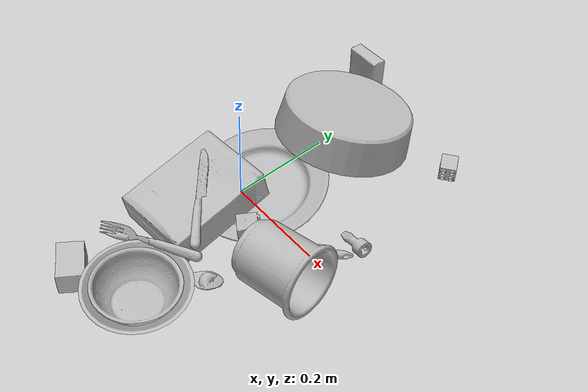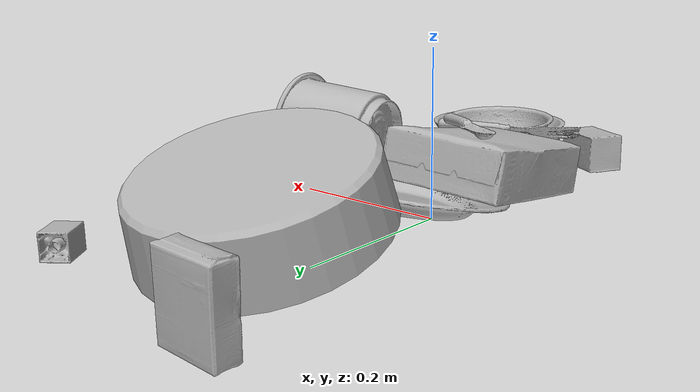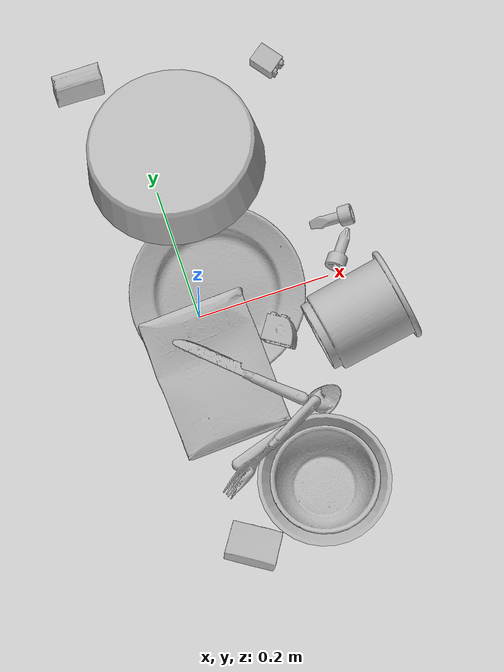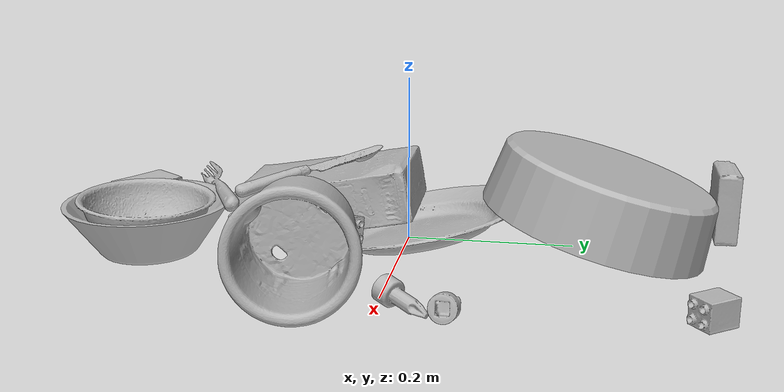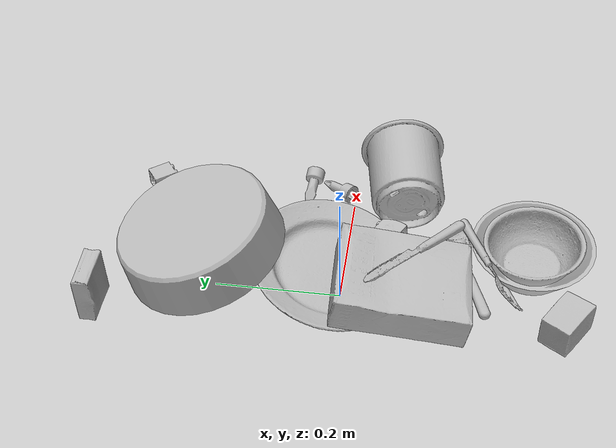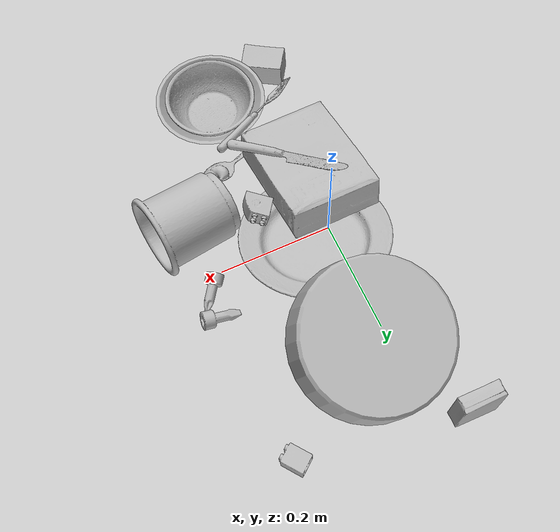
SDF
<sdf version="1.4">
  <world name="default">
    <light name="light1" type="point">
      <pose>0 0 1 0 0 0</pose>
      <diffuse>3 3 3 1</diffuse>
      <specular>3 3 3 1</specular>
    </light>
    <light name="light2" type="point">
      <pose>0 0.5 2 0 0 0</pose>
      <diffuse>1 1 1 1</diffuse>
      <specular>1 1 1 1</specular>
    </light>
    <light name="light3" type="point">
      <pose>0 0.5 2 0 0 0</pose>
      <diffuse>3 3 3 1</diffuse>
      <specular>3 3 3 1</specular>
    </light>
    <scene>
      <ambient>0.7 0.7 0.7</ambient>
    </scene>
    <model name="plate1">
      <link name="link_plate1">
        <collision name="default">
          <geometry>
            <mesh>
              <uri>model://plate/collision_meshes/collision.obj</uri>
              <scale>1.0 1.0 1.0</scale>
            </mesh>
          </geometry>
          <surface>
            <friction>
              <ode>
                <mu>0.5</mu>
                <mu2>0.5</mu2>
              </ode>
            </friction>
          <contact>
        <ode>
            <max_vel>0</max_vel>
            <min_depth>0.0001</min_depth>
            <kp>1e8</kp>
        </ode>
    </contact></surface>
        </collision>
        <visual name="default">
          <geometry>
            <mesh>
              <uri>model://plate/visual_meshes/visual.dae</uri>
              <scale>1.0 1.0 1.0</scale>
            </mesh>
          </geometry>
        </visual>
        <inertial>
          <mass>0.20059238374233246</mass>
          <pose>-0.0006044621695764363 0.00027825910365208983 -0.001056200242601335 0.002218800652723057 -0.0032254723094637602 0.45260588699646775</pose>
          <inertia>
            <ixx>0.00093837525</ixx>
            <iyy>0.0009294</iyy>
            <izz>0.0018353215</izz>
            <ixy>0</ixy>
            <ixz>0</ixz>
            <iyz>0</iyz>
          </inertia>
        </inertial>
      </link>
      <pose>0.03476271033287048 0.01974671334028244 0.029836179688572884 -0.19475447933468135 -0.08157850430302124 2.478132476055519</pose>
    </model>
    <model name="plate2">
      <link name="link_plate2">
        <collision name="default">
          <geometry>
            <mesh>
              <uri>model://pan_tefal/collision_meshes/collision.obj</uri>
              <scale>1.0 1.0 1.0</scale>
            </mesh>
          </geometry>
          <surface>
            <friction>
              <ode>
                <mu>0.5</mu>
                <mu2>0.5</mu2>
              </ode>
            </friction>
          <contact>
        <ode>
            <max_vel>0</max_vel>
            <min_depth>0.0001</min_depth>
            <kp>1e8</kp>
        </ode>
    </contact></surface>
        </collision>
        <visual name="default">
          <geometry>
            <mesh>
              <uri>model://pan_tefal/visual_meshes/visual.dae</uri>
              <scale>1.0 1.0 1.0</scale>
            </mesh>
          </geometry>
        </visual>
        <inertial>
          <mass>0.5801199674606323</mass>
          <pose>-0.00018002555589191616 3.279062366345897e-05 -0.008514936082065105 0.0008190222895173471 -0.0003301392673675887 -0.3318501085377774</pose>
          <inertia>
            <ixx>0.00400454</ixx>
            <iyy>0.004030358</iyy>
            <izz>0.0073715877</izz>
            <ixy>0</ixy>
            <ixz>0</ixz>
            <iyz>0</iyz>
          </inertia>
        </inertial>
      </link>
      <pose>0.03630924969911575 0.23084405064582825 0.07307818531990051 -2.860977272492056 0.01628411037464284 -3.055495567465555</pose>
    </model>
    <model name="bowl1">
      <link name="link_bowl1">
        <collision name="default">
          <geometry>
            <mesh>
              <uri>model://bowl/collision_meshes/collision.obj</uri>
              <scale>1.0 1.0 1.0</scale>
            </mesh>
          </geometry>
          <surface>
            <friction>
              <ode>
                <mu>0.5</mu>
                <mu2>0.5</mu2>
              </ode>
            </friction>
          <contact>
        <ode>
            <max_vel>0</max_vel>
            <min_depth>0.0001</min_depth>
            <kp>1e8</kp>
        </ode>
    </contact></surface>
        </collision>
        <visual name="default">
          <geometry>
            <mesh>
              <uri>model://bowl/visual_meshes/visual.dae</uri>
              <scale>1.0 1.0 1.0</scale>
            </mesh>
          </geometry>
        </visual>
        <inertial>
          <mass>0.055578216910362244</mass>
          <pose>0.00020445502013899386 -0.0010302060982212424 -0.000804265437182039 -0.015764048263850368 0.014546844804774466 0.7140432473852318</pose>
          <inertia>
            <ixx>0.00012766755</ixx>
            <iyy>0.000124815</iyy>
            <izz>0.00021478078</izz>
            <ixy>0</ixy>
            <ixz>0</ixz>
            <iyz>0</iyz>
          </inertia>
        </inertial>
      </link>
      <pose>0.09348221123218536 -0.30031171441078186 0.03926534578204155 -0.018825875013948785 0.032511938269989375 0.8363617637946262</pose>
    </model>
    <model name="bowl2">
      <link name="link_bowl2">
        <collision name="default">
          <geometry>
            <mesh>
              <uri>model://bowl_a/collision_meshes/collision.obj</uri>
              <scale>1.0 1.0 1.0</scale>
            </mesh>
          </geometry>
          <surface>
            <friction>
              <ode>
                <mu>0.5</mu>
                <mu2>0.5</mu2>
              </ode>
            </friction>
          <contact>
        <ode>
            <max_vel>0</max_vel>
            <min_depth>0.0001</min_depth>
            <kp>1e8</kp>
        </ode>
    </contact></surface>
        </collision>
        <visual name="default">
          <geometry>
            <mesh>
              <uri>model://bowl_a/visual_meshes/visual.dae</uri>
              <scale>1.0 1.0 1.0</scale>
            </mesh>
          </geometry>
        </visual>
        <inertial>
          <mass>0.31475314497947693</mass>
          <pose>0.00027867438620887697 4.730821092380211e-05 -0.0013765294570475817 -0.0009805369688078041 -0.0010938258688624044 -0.19123886294168949</pose>
          <inertia>
            <ixx>0.00089611666</ixx>
            <iyy>0.00090161816</iyy>
            <izz>0.0015937777</izz>
            <ixy>0</ixy>
            <ixz>0</ixz>
            <iyz>0</iyz>
          </inertia>
        </inertial>
      </link>
      <pose>0.09323885291814804 -0.2984409034252167 0.03038264624774456 8.898932315579924e-06 5.4724079219723554e-06 0.9898146173886662</pose>
    </model>
    <model name="silverware1">
      <link name="link_silverware1">
        <collision name="default">
          <geometry>
            <mesh>
              <uri>model://spoon/collision_meshes/collision.obj</uri>
              <scale>1.0 1.0 1.0</scale>
            </mesh>
          </geometry>
          <surface>
            <friction>
              <ode>
                <mu>0.5</mu>
                <mu2>0.5</mu2>
              </ode>
            </friction>
          <contact>
        <ode>
            <max_vel>0</max_vel>
            <min_depth>0.0001</min_depth>
            <kp>1e8</kp>
        </ode>
    </contact></surface>
        </collision>
        <visual name="default">
          <geometry>
            <mesh>
              <uri>model://spoon/visual_meshes/visual.dae</uri>
              <scale>1.0 1.0 1.0</scale>
            </mesh>
          </geometry>
        </visual>
        <inertial>
          <mass>0.019504988566040993</mass>
          <pose>-0.005526313092559576 -0.0016034174477681518 -0.0007271654321812093 0.03521671064592188 -0.039065845080026425 0.006150613244710899</pose>
          <inertia>
            <ixx>1.0848988e-06</ixx>
            <iyy>7.421582e-05</iyy>
            <izz>7.4750846e-05</izz>
            <ixy>0</ixy>
            <ixz>0</ixz>
            <iyz>0</iyz>
          </inertia>
        </inertial>
      </link>
      <pose>0.06831248104572296 -0.19809933006763458 0.008379172533750534 0.007968256814623837 0.02679937525676406 0.3265504505894214</pose>
    </model>
    <model name="box1">
      <link name="link_box1">
        <collision name="default">
          <geometry>
            <mesh>
              <uri>model://cracker_box/collision_meshes/collision.obj</uri>
              <scale>1.0 1.0 1.0</scale>
            </mesh>
          </geometry>
          <surface>
            <friction>
              <ode>
                <mu>0.5</mu>
                <mu2>0.5</mu2>
              </ode>
            </friction>
          <contact>
        <ode>
            <max_vel>0</max_vel>
            <min_depth>0.0001</min_depth>
            <kp>1e8</kp>
        </ode>
    </contact></surface>
        </collision>
        <visual name="default">
          <geometry>
            <mesh>
              <uri>model://cracker_box/visual_meshes/visual.dae</uri>
              <scale>1.0 1.0 1.0</scale>
            </mesh>
          </geometry>
        </visual>
        <inertial>
          <mass>2.5078790187835693</mass>
          <pose>0.0009464150061830878 0.00025434247800149024 -0.0017029535956680775 -0.00031620768203149627 -0.01110648960041945 0.002546794303792924</pose>
          <inertia>
            <ixx>0.0063789245</ixx>
            <iyy>0.010532858</iyy>
            <izz>0.015031353</izz>
            <ixy>0</ixy>
            <ixz>0</ixz>
            <iyz>0</iyz>
          </inertia>
        </inertial>
      </link>
      <pose>-0.008532986044883728 -0.09804768115282059 0.053157396614551544 0.041787627826363534 0.17337262281992333 -1.5216957921341676</pose>
    </model>
    <model name="box2">
      <link name="link_box2">
        <collision name="default">
          <geometry>
            <mesh>
              <uri>model://gelatin_box/collision_meshes/collision.obj</uri>
              <scale>1.0 1.0 1.0</scale>
            </mesh>
          </geometry>
          <surface>
            <friction>
              <ode>
                <mu>0.5</mu>
                <mu2>0.5</mu2>
              </ode>
            </friction>
          <contact>
        <ode>
            <max_vel>0</max_vel>
            <min_depth>0.0001</min_depth>
            <kp>1e8</kp>
        </ode>
    </contact></surface>
        </collision>
        <visual name="default">
          <geometry>
            <mesh>
              <uri>model://gelatin_box/visual_meshes/visual.dae</uri>
              <scale>1.0 1.0 1.0</scale>
            </mesh>
          </geometry>
        </visual>
        <inertial>
          <mass>0.1847851723432541</mass>
          <pose>0.0004319618456065655 0.00011156872642459348 -0.0003640321083366871 -0.001050372098056681 -0.004755818221834168 0.016440563197305347</pose>
          <inertia>
            <ixx>0.00013044327</ixx>
            <iyy>9.317494e-05</iyy>
            <izz>0.0001985637</izz>
            <ixy>0</ixy>
            <ixz>0</ixz>
            <iyz>0</iyz>
          </inertia>
        </inertial>
      </link>
      <pose>-0.06296262890100479 0.3819311857223511 0.04482777789235115 -1.5709334323454531 -0.00017913913974052366 3.121554792554734</pose>
    </model>
    <model name="cup1">
      <link name="link_cup1">
        <collision name="default">
          <geometry>
            <mesh>
              <uri>model://d_cups/collision_meshes/collision.obj</uri>
              <scale>2.0 2.0 2.0</scale>
            </mesh>
          </geometry>
          <surface>
            <friction>
              <ode>
                <mu>0.5</mu>
                <mu2>0.5</mu2>
              </ode>
            </friction>
          <contact>
        <ode>
            <max_vel>0</max_vel>
            <min_depth>0.0001</min_depth>
            <kp>1e8</kp>
        </ode>
    </contact></surface>
        </collision>
        <visual name="default">
          <geometry>
            <mesh>
              <uri>model://d_cups/visual_meshes/visual.dae</uri>
              <scale>2.0 2.0 2.0</scale>
            </mesh>
          </geometry>
        </visual>
        <inertial>
          <mass>0.47328615188598633</mass>
          <pose>0.0016136143822222948 0.0038234798703342676 -0.004533303435891867 0.24012870248045765 -0.247092443015796 0.5942312682521343</pose>
          <inertia>
            <ixx>0.0015850074</ixx>
            <iyy>0.0015804201</iyy>
            <izz>0.0014347013</izz>
            <ixy>0</ixy>
            <ixz>0</ixz>
            <iyz>0</iyz>
          </inertia>
        </inertial>
      </link>
      <pose>0.2178819179534912 -0.08343750983476639 0.06477224081754684 1.482220349976443 -0.2434428809759277 1.7617996839391066</pose>
    </model>
    <model name="silverware2">
      <link name="link_silverware2">
        <collision name="default">
          <geometry>
            <mesh>
              <uri>model://knife/collision_meshes/collision.obj</uri>
              <scale>1.0 1.0 1.0</scale>
            </mesh>
          </geometry>
          <surface>
            <friction>
              <ode>
                <mu>0.5</mu>
                <mu2>0.5</mu2>
              </ode>
            </friction>
          <contact>
        <ode>
            <max_vel>0</max_vel>
            <min_depth>0.0001</min_depth>
            <kp>1e8</kp>
        </ode>
    </contact></surface>
        </collision>
        <visual name="default">
          <geometry>
            <mesh>
              <uri>model://knife/visual_meshes/visual.dae</uri>
              <scale>1.0 1.0 1.0</scale>
            </mesh>
          </geometry>
        </visual>
        <inertial>
          <mass>0.03430156037211418</mass>
          <pose>-0.02378525398671627 0.0015275129117071629 5.062017953605391e-05 0.07305950900181668 0.01724842494985857 -0.007409825116106198</pose>
          <inertia>
            <ixx>9.736174e-07</ixx>
            <iyy>0.00013178105</iyy>
            <izz>0.00013209462</izz>
            <ixy>0</ixy>
            <ixz>0</ixz>
            <iyz>0</iyz>
          </inertia>
        </inertial>
      </link>
      <pose>0.027132175862789154 -0.11222843080759048 0.09032072126865387 0.14572607055074785 -0.10206952508908414 2.4083697137358</pose>
    </model>
    <model name="silverware3">
      <link name="link_silverware3">
        <collision name="default">
          <geometry>
            <mesh>
              <uri>model://fork/collision_meshes/collision.obj</uri>
              <scale>1.0 1.0 1.0</scale>
            </mesh>
          </geometry>
          <surface>
            <friction>
              <ode>
                <mu>0.5</mu>
                <mu2>0.5</mu2>
              </ode>
            </friction>
          <contact>
        <ode>
            <max_vel>0</max_vel>
            <min_depth>0.0001</min_depth>
            <kp>1e8</kp>
        </ode>
    </contact></surface>
        </collision>
        <visual name="default">
          <geometry>
            <mesh>
              <uri>model://fork/visual_meshes/visual.dae</uri>
              <scale>1.0 1.0 1.0</scale>
            </mesh>
          </geometry>
        </visual>
        <inertial>
          <mass>0.014111565425992012</mass>
          <pose>-0.02957005426287651 0.0004658825055230409 0.00032188615296036005 -0.01355195006397287 -0.010977841645129428 0.014453906946454091</pose>
          <inertia>
            <ixx>4.9469025e-07</ixx>
            <iyy>3.684124e-05</iyy>
            <izz>3.7062495e-05</izz>
            <ixy>0</ixy>
            <ixz>0</ixz>
            <iyz>0</iyz>
          </inertia>
        </inertial>
      </link>
      <pose>0.03588005527853966 -0.22792977094650269 0.06593117117881775 -0.7909588136589523 0.042920796100651006 -2.668568070307003</pose>
    </model>
    <model name="toy1">
      <link name="link_toy1">
        <collision name="default">
          <geometry>
            <mesh>
              <uri>model://b_lego_duplo/collision_meshes/collision.obj</uri>
              <scale>1.0 1.0 1.0</scale>
            </mesh>
          </geometry>
          <surface>
            <friction>
              <ode>
                <mu>0.5</mu>
                <mu2>0.5</mu2>
              </ode>
            </friction>
          <contact>
        <ode>
            <max_vel>0</max_vel>
            <min_depth>0.0001</min_depth>
            <kp>1e8</kp>
        </ode>
    </contact></surface>
        </collision>
        <visual name="default">
          <geometry>
            <mesh>
              <uri>model://b_lego_duplo/visual_meshes/visual.dae</uri>
              <scale>1.0 1.0 1.0</scale>
            </mesh>
          </geometry>
        </visual>
        <inertial>
          <mass>0.029451588168740273</mass>
          <pose>-0.00011053002526750788 -9.152366146736313e-06 0.0019294293597340584 -0.03749525813168218 -0.026353287435260622 0.45191626186006195</pose>
          <inertia>
            <ixx>6.0274892e-06</ixx>
            <iyy>6.0680068e-06</iyy>
            <izz>5.3702943e-06</izz>
            <ixy>0</ixy>
            <ixz>0</ixz>
            <iyz>0</iyz>
          </inertia>
        </inertial>
      </link>
      <pose>0.21821951866149902 0.33611196279525757 0.016180727630853653 0.04378103589101181 -1.5623867956765716 2.172549052978186</pose>
    </model>
    <model name="toy2">
      <link name="link_toy2">
        <collision name="default">
          <geometry>
            <mesh>
              <uri>model://foam_brick/collision_meshes/collision.obj</uri>
              <scale>1.0 1.0 1.0</scale>
            </mesh>
          </geometry>
          <surface>
            <friction>
              <ode>
                <mu>0.5</mu>
                <mu2>0.5</mu2>
              </ode>
            </friction>
          <contact>
        <ode>
            <max_vel>0</max_vel>
            <min_depth>0.0001</min_depth>
            <kp>1e8</kp>
        </ode>
    </contact></surface>
        </collision>
        <visual name="default">
          <geometry>
            <mesh>
              <uri>model://foam_brick/visual_meshes/visual.dae</uri>
              <scale>1.0 1.0 1.0</scale>
            </mesh>
          </geometry>
        </visual>
        <inertial>
          <mass>0.2443593144416809</mass>
          <pose>-0.0002522472059354186 0.00034584393142722547 -0.0002532101352699101 -0.2940184651969868 0.017274440266988163 -0.0007449890747987857</pose>
          <inertia>
            <ixx>0.00010674072</ixx>
            <iyy>0.00017041703</iyy>
            <izz>0.00017258283</izz>
            <ixy>0</ixy>
            <ixz>0</ixz>
            <iyz>0</iyz>
          </inertia>
        </inertial>
      </link>
      <pose>-0.03330431878566742 -0.3527062237262726 0.02549685351550579 3.132508450518123 0.006607205859124496 -0.5683412394260858</pose>
    </model>
    <model name="toy3">
      <link name="link_toy3">
        <collision name="default">
          <geometry>
            <mesh>
              <uri>model://d_lego_duplo/collision_meshes/collision.obj</uri>
              <scale>1.0 1.0 1.0</scale>
            </mesh>
          </geometry>
          <surface>
            <friction>
              <ode>
                <mu>0.5</mu>
                <mu2>0.5</mu2>
              </ode>
            </friction>
          <contact>
        <ode>
            <max_vel>0</max_vel>
            <min_depth>0.0001</min_depth>
            <kp>1e8</kp>
        </ode>
    </contact></surface>
        </collision>
        <visual name="default">
          <geometry>
            <mesh>
              <uri>model://d_lego_duplo/visual_meshes/visual.dae</uri>
              <scale>1.0 1.0 1.0</scale>
            </mesh>
          </geometry>
        </visual>
        <inertial>
          <mass>0.033699363470077515</mass>
          <pose>0.002830563113093376 0.0001636613014852628 0.0008589802891947329 0.08010879334546937 -0.38355231252286476 0.0010296922462193392</pose>
          <inertia>
            <ixx>6.5236977e-06</ixx>
            <iyy>9.258897e-06</iyy>
            <izz>8.928908e-06</izz>
            <ixy>0</ixy>
            <ixz>0</ixz>
            <iyz>0</iyz>
          </inertia>
        </inertial>
      </link>
      <pose>0.10604538768529892 -0.06516815721988678 0.04241277277469635 1.4842673028562718 0.2166671647809806 2.524040026650411</pose>
    </model>
    <model name="toy4">
      <link name="link_toy4">
        <collision name="default">
          <geometry>
            <mesh>
              <uri>model://d_toy_airplane/collision_meshes/collision.obj</uri>
              <scale>1.0 1.0 1.0</scale>
            </mesh>
          </geometry>
          <surface>
            <friction>
              <ode>
                <mu>0.5</mu>
                <mu2>0.5</mu2>
              </ode>
            </friction>
          <contact>
        <ode>
            <max_vel>0</max_vel>
            <min_depth>0.0001</min_depth>
            <kp>1e8</kp>
        </ode>
    </contact></surface>
        </collision>
        <visual name="default">
          <geometry>
            <mesh>
              <uri>model://d_toy_airplane/visual_meshes/visual.dae</uri>
              <scale>1.0 1.0 1.0</scale>
            </mesh>
          </geometry>
        </visual>
        <inertial>
          <mass>0.016584575176239014</mass>
          <pose>9.410303027834743e-05 -5.809338472317904e-05 -0.01172809861600399 0.0002669776058846709 0.004678969238403601 0.5194647440200774</pose>
          <inertia>
            <ixx>4.9717323e-06</ixx>
            <iyy>4.975482e-06</iyy>
            <izz>1.5009987e-06</izz>
            <ixy>0</ixy>
            <ixz>0</ixz>
            <iyz>0</iyz>
          </inertia>
        </inertial>
      </link>
      <pose>0.2314799726009369 0.03138719126582146 0.011753476224839687 1.7936063788176544 0.4923874884264643 2.609762105138616</pose>
    </model>
    <model name="toy5">
      <link name="link_toy5">
        <collision name="default">
          <geometry>
            <mesh>
              <uri>model://e_toy_airplane/collision_meshes/collision.obj</uri>
              <scale>1.0 1.0 1.0</scale>
            </mesh>
          </geometry>
          <surface>
            <friction>
              <ode>
                <mu>0.5</mu>
                <mu2>0.5</mu2>
              </ode>
            </friction>
          <contact>
        <ode>
            <max_vel>0</max_vel>
            <min_depth>0.0001</min_depth>
            <kp>1e8</kp>
        </ode>
    </contact></surface>
        </collision>
        <visual name="default">
          <geometry>
            <mesh>
              <uri>model://e_toy_airplane/visual_meshes/visual.dae</uri>
              <scale>1.0 1.0 1.0</scale>
            </mesh>
          </geometry>
        </visual>
        <inertial>
          <mass>0.01714155077934265</mass>
          <pose>0.00011740483023459092 -2.2482887288788334e-05 -0.011187203228473663 0.005518467343725363 0.009228313895921611 0.15041273076279138</pose>
          <inertia>
            <ixx>5.2317982e-06</ixx>
            <iyy>5.178279e-06</iyy>
            <izz>1.5723607e-06</izz>
            <ixy>0</ixy>
            <ixz>0</ixz>
            <iyz>0</iyz>
          </inertia>
        </inertial>
      </link>
      <pose>0.2309400588274002 0.07723098993301392 0.010808688588440418 -2.1451862166721027 1.1028242689735226 0.9638550398428898</pose>
    </model>
  <physics type="ode">
      <max_contacts>50</max_contacts>
      <ode>
        <solver>
          <type>quick</type>
          <iters>75</iters>
        </solver>
        <constraints>
          <contact_max_correcting_vel>0</contact_max_correcting_vel>
          <contact_surface_layer>0</contact_surface_layer>
        </constraints>
      </ode>
    </physics></world>
</sdf>
